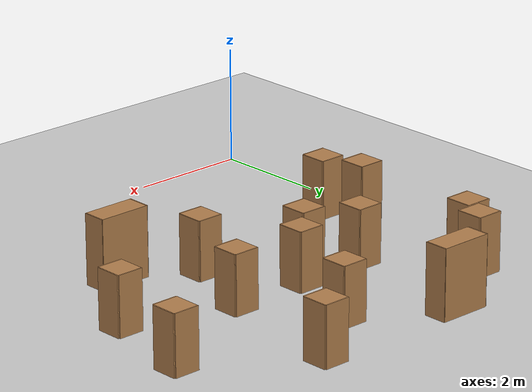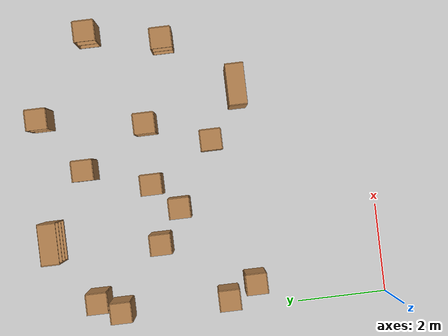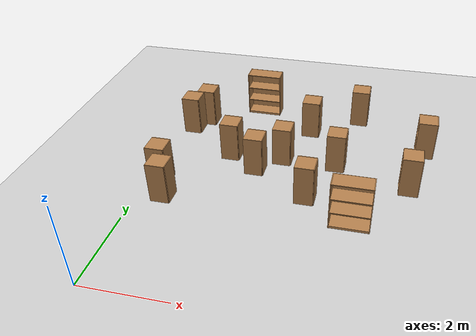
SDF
<sdf version="1.6">
 <world name="default">
  <model name="ground_plane">
   <static>1</static>
   <link name="link">
    <collision name="collision">
     <geometry><plane><normal>0 0 1</normal><size>100 100</size></plane></geometry>
     <surface><friction><ode><mu>100</mu><mu2>50</mu2></ode></friction></surface>
    </collision>
    <visual name="visual">
     <cast_shadows>0</cast_shadows>
     <geometry><plane><normal>0 0 1</normal><size>100 100</size></plane></geometry>
     <material>
      <script><uri>file://media/materials/scripts/gazebo.material</uri><name>Gazebo/Grey</name></script>
     </material>
    </visual>
   </link>
  </model>
  <model name="cabinet_45">
   <static>1</static>
   <link name="cabinet_bottom_plate">
    <inertial>
     <pose>0 0 -1 0 -0 0</pose>
     <inertia><ixx>2.05</ixx><ixy>0</ixy><ixz>0</ixz><iyy>2.05</iyy><iyz>0</iyz><izz>2.05</izz></inertia>
     <mass>25</mass>
    </inertial>
    <collision name="cabinet_bottom_plate_geom">
     <pose>0 0 0.01 0 -0 0</pose>
     <geometry><box><size>0.45 0.45 0.02</size></box></geometry>
    </collision>
    <visual name="cabinet_bottom_plate_geom_visual">
     <pose>0 0 0.01 0 -0 0</pose>
     <geometry><box><size>0.45 0.45 0.02</size></box></geometry>
     <material>
      <script><uri>file://media/materials/scripts/gazebo.material</uri><name>Gazebo/Wood</name></script>
     </material>
    </visual>
    <collision name="cabinet_bottom_plate_geom_cabinet_back_plate">
     <pose>0.235 0 0.51 0 -0 0</pose>
     <geometry><box><size>0.02 0.45 1.02</size></box></geometry>
    </collision>
    <visual name="cabinet_bottom_plate_geom_cabinet_back_plate_visual">
     <pose>0.235 0 0.51 0 -0 0</pose>
     <geometry><box><size>0.02 0.45 1.02</size></box></geometry>
     <material>
      <script><uri>file://media/materials/scripts/gazebo.material</uri><name>Gazebo/Wood</name></script>
     </material>
    </visual>
    <collision name="cabinet_bottom_plate_geom_cabinet_left_plate">
     <pose>0 0.235 0.51 0 -0 0</pose>
     <geometry><box><size>0.45 0.02 1.02</size></box></geometry>
    </collision>
    <visual name="cabinet_bottom_plate_geom_cabinet_left_plate_visual">
     <pose>0 0.235 0.51 0 -0 0</pose>
     <geometry><box><size>0.45 0.02 1.02</size></box></geometry>
     <material>
      <script><uri>file://media/materials/scripts/gazebo.material</uri><name>Gazebo/Wood</name></script>
     </material>
    </visual>
    <collision name="cabinet_bottom_plate_geom_cabinet_middle_plate">
     <pose>0 0 0.51 0 -0 0</pose>
     <geometry><box><size>0.45 0.45 0.02</size></box></geometry>
    </collision>
    <visual name="cabinet_bottom_plate_geom_cabinet_middle_plate_visual">
     <pose>0 0 0.51 0 -0 0</pose>
     <geometry><box><size>0.45 0.45 0.02</size></box></geometry>
     <material>
      <script><uri>file://media/materials/scripts/gazebo.material</uri><name>Gazebo/Wood</name></script>
     </material>
    </visual>
    <collision name="cabinet_bottom_plate_geom_cabinet_right_plate">
     <pose>0 -0.235 0.51 0 -0 0</pose>
     <geometry><box><size>0.45 0.02 1.02</size></box></geometry>
    </collision>
    <visual name="cabinet_bottom_plate_geom_cabinet_right_plate_visual">
     <pose>0 -0.235 0.51 0 -0 0</pose>
     <geometry><box><size>0.45 0.02 1.02</size></box></geometry>
     <material>
      <script><uri>file://media/materials/scripts/gazebo.material</uri><name>Gazebo/Wood</name></script>
     </material>
    </visual>
    <collision name="cabinet_bottom_plate_geom_cabinet_top_plate">
     <pose>0 0 1.01 0 -0 0</pose>
     <geometry><box><size>0.45 0.45 0.02</size></box></geometry>
    </collision>
    <visual name="cabinet_bottom_plate_geom_cabinet_top_plate_visual">
     <pose>0 0 1.01 0 -0 0</pose>
     <geometry><box><size>0.45 0.45 0.02</size></box></geometry>
     <material>
      <script><uri>file://media/materials/scripts/gazebo.material</uri><name>Gazebo/Wood</name></script>
     </material>
    </visual>
   </link>
   <pose>0.616453 2.94189 0 0 -0 0</pose>
  </model>
  <model name="bookshelf_7">
   <static>1</static>
   <link name="link">
    <inertial><mass>1</mass></inertial>
    <collision name="back">
     <pose>0 0.005 0.6 0 -0 0</pose>
     <geometry><box><size>0.9 0.01 1.2</size></box></geometry>
    </collision>
    <visual name="visual1">
     <pose>0 0.005 0.6 0 -0 0</pose>
     <geometry><box><size>0.9 0.01 1.2</size></box></geometry>
     <material>
      <script><uri>file://media/materials/scripts/gazebo.material</uri><name>Gazebo/Wood</name></script>
     </material>
    </visual>
    <collision name="left_side">
     <pose>0.45 -0.195 0.6 0 -0 0</pose>
     <geometry><box><size>0.02 0.4 1.2</size></box></geometry>
    </collision>
    <visual name="visual2">
     <pose>0.45 -0.195 0.6 0 -0 0</pose>
     <geometry><box><size>0.02 0.4 1.2</size></box></geometry>
     <material>
      <script><uri>file://media/materials/scripts/gazebo.material</uri><name>Gazebo/Wood</name></script>
     </material>
    </visual>
    <collision name="right_side">
     <pose>-0.45 -0.195 0.6 0 -0 0</pose>
     <geometry><box><size>0.02 0.4 1.2</size></box></geometry>
    </collision>
    <visual name="visual3">
     <pose>-0.45 -0.195 0.6 0 -0 0</pose>
     <geometry><box><size>0.02 0.4 1.2</size></box></geometry>
     <material>
      <script><uri>file://media/materials/scripts/gazebo.material</uri><name>Gazebo/Wood</name></script>
     </material>
    </visual>
    <collision name="bottom">
     <pose>0 -0.195 0.03 0 -0 0</pose>
     <geometry><box><size>0.88 0.4 0.06</size></box></geometry>
    </collision>
    <visual name="visual4">
     <pose>0 -0.195 0.03 0 -0 0</pose>
     <geometry><box><size>0.88 0.4 0.06</size></box></geometry>
     <material>
      <script><uri>file://media/materials/scripts/gazebo.material</uri><name>Gazebo/Wood</name></script>
     </material>
    </visual>
    <collision name="top">
     <pose>0 -0.195 1.19 0 -0 0</pose>
     <geometry><box><size>0.88 0.4 0.02</size></box></geometry>
    </collision>
    <visual name="visual5">
     <pose>0 -0.195 1.19 0 -0 0</pose>
     <geometry><box><size>0.88 0.4 0.02</size></box></geometry>
     <material>
      <script><uri>file://media/materials/scripts/gazebo.material</uri><name>Gazebo/Wood</name></script>
     </material>
    </visual>
    <collision name="low_shelf">
     <pose>0 -0.195 0.43 0 -0 0</pose>
     <geometry><box><size>0.88 0.4 0.02</size></box></geometry>
    </collision>
    <visual name="visual6">
     <pose>0 -0.195 0.43 0 -0 0</pose>
     <geometry><box><size>0.88 0.4 0.02</size></box></geometry>
     <material>
      <script><uri>file://media/materials/scripts/gazebo.material</uri><name>Gazebo/Wood</name></script>
     </material>
    </visual>
    <collision name="high_shelf">
     <pose>0 -0.195 0.8 0 -0 0</pose>
     <geometry><box><size>0.88 0.4 0.02</size></box></geometry>
    </collision>
    <visual name="visual7">
     <pose>0 -0.195 0.8 0 -0 0</pose>
     <geometry><box><size>0.88 0.4 0.02</size></box></geometry>
     <material>
      <script><uri>file://media/materials/scripts/gazebo.material</uri><name>Gazebo/Wood</name></script>
     </material>
    </visual>
   </link>
   <pose>4.99475 3.0763 0 0 -0 0</pose>
  </model>
  <model name="cabinet_50">
   <static>1</static>
   <link name="cabinet_bottom_plate">
    <inertial>
     <pose>0 0 -1 0 -0 0</pose>
     <inertia><ixx>2.05</ixx><ixy>0</ixy><ixz>0</ixz><iyy>2.05</iyy><iyz>0</iyz><izz>2.05</izz></inertia>
     <mass>25</mass>
    </inertial>
    <collision name="cabinet_bottom_plate_geom">
     <pose>0 0 0.01 0 -0 0</pose>
     <geometry><box><size>0.45 0.45 0.02</size></box></geometry>
    </collision>
    <visual name="cabinet_bottom_plate_geom_visual">
     <pose>0 0 0.01 0 -0 0</pose>
     <geometry><box><size>0.45 0.45 0.02</size></box></geometry>
     <material>
      <script><uri>file://media/materials/scripts/gazebo.material</uri><name>Gazebo/Wood</name></script>
     </material>
    </visual>
    <collision name="cabinet_bottom_plate_geom_cabinet_back_plate">
     <pose>0.235 0 0.51 0 -0 0</pose>
     <geometry><box><size>0.02 0.45 1.02</size></box></geometry>
    </collision>
    <visual name="cabinet_bottom_plate_geom_cabinet_back_plate_visual">
     <pose>0.235 0 0.51 0 -0 0</pose>
     <geometry><box><size>0.02 0.45 1.02</size></box></geometry>
     <material>
      <script><uri>file://media/materials/scripts/gazebo.material</uri><name>Gazebo/Wood</name></script>
     </material>
    </visual>
    <collision name="cabinet_bottom_plate_geom_cabinet_left_plate">
     <pose>0 0.235 0.51 0 -0 0</pose>
     <geometry><box><size>0.45 0.02 1.02</size></box></geometry>
    </collision>
    <visual name="cabinet_bottom_plate_geom_cabinet_left_plate_visual">
     <pose>0 0.235 0.51 0 -0 0</pose>
     <geometry><box><size>0.45 0.02 1.02</size></box></geometry>
     <material>
      <script><uri>file://media/materials/scripts/gazebo.material</uri><name>Gazebo/Wood</name></script>
     </material>
    </visual>
    <collision name="cabinet_bottom_plate_geom_cabinet_middle_plate">
     <pose>0 0 0.51 0 -0 0</pose>
     <geometry><box><size>0.45 0.45 0.02</size></box></geometry>
    </collision>
    <visual name="cabinet_bottom_plate_geom_cabinet_middle_plate_visual">
     <pose>0 0 0.51 0 -0 0</pose>
     <geometry><box><size>0.45 0.45 0.02</size></box></geometry>
     <material>
      <script><uri>file://media/materials/scripts/gazebo.material</uri><name>Gazebo/Wood</name></script>
     </material>
    </visual>
    <collision name="cabinet_bottom_plate_geom_cabinet_right_plate">
     <pose>0 -0.235 0.51 0 -0 0</pose>
     <geometry><box><size>0.45 0.02 1.02</size></box></geometry>
    </collision>
    <visual name="cabinet_bottom_plate_geom_cabinet_right_plate_visual">
     <pose>0 -0.235 0.51 0 -0 0</pose>
     <geometry><box><size>0.45 0.02 1.02</size></box></geometry>
     <material>
      <script><uri>file://media/materials/scripts/gazebo.material</uri><name>Gazebo/Wood</name></script>
     </material>
    </visual>
    <collision name="cabinet_bottom_plate_geom_cabinet_top_plate">
     <pose>0 0 1.01 0 -0 0</pose>
     <geometry><box><size>0.45 0.45 0.02</size></box></geometry>
    </collision>
    <visual name="cabinet_bottom_plate_geom_cabinet_top_plate_visual">
     <pose>0 0 1.01 0 -0 0</pose>
     <geometry><box><size>0.45 0.45 0.02</size></box></geometry>
     <material>
      <script><uri>file://media/materials/scripts/gazebo.material</uri><name>Gazebo/Wood</name></script>
     </material>
    </visual>
   </link>
   <pose>0.330155 3.56311 0 0 -0 0</pose>
  </model>
  <model name="cabinet_51">
   <static>1</static>
   <link name="cabinet_bottom_plate">
    <inertial>
     <pose>0 0 -1 0 -0 0</pose>
     <inertia><ixx>2.05</ixx><ixy>0</ixy><ixz>0</ixz><iyy>2.05</iyy><iyz>0</iyz><izz>2.05</izz></inertia>
     <mass>25</mass>
    </inertial>
    <collision name="cabinet_bottom_plate_geom">
     <pose>0 0 0.01 0 -0 0</pose>
     <geometry><box><size>0.45 0.45 0.02</size></box></geometry>
    </collision>
    <visual name="cabinet_bottom_plate_geom_visual">
     <pose>0 0 0.01 0 -0 0</pose>
     <geometry><box><size>0.45 0.45 0.02</size></box></geometry>
     <material>
      <script><uri>file://media/materials/scripts/gazebo.material</uri><name>Gazebo/Wood</name></script>
     </material>
    </visual>
    <collision name="cabinet_bottom_plate_geom_cabinet_back_plate">
     <pose>0.235 0 0.51 0 -0 0</pose>
     <geometry><box><size>0.02 0.45 1.02</size></box></geometry>
    </collision>
    <visual name="cabinet_bottom_plate_geom_cabinet_back_plate_visual">
     <pose>0.235 0 0.51 0 -0 0</pose>
     <geometry><box><size>0.02 0.45 1.02</size></box></geometry>
     <material>
      <script><uri>file://media/materials/scripts/gazebo.material</uri><name>Gazebo/Wood</name></script>
     </material>
    </visual>
    <collision name="cabinet_bottom_plate_geom_cabinet_left_plate">
     <pose>0 0.235 0.51 0 -0 0</pose>
     <geometry><box><size>0.45 0.02 1.02</size></box></geometry>
    </collision>
    <visual name="cabinet_bottom_plate_geom_cabinet_left_plate_visual">
     <pose>0 0.235 0.51 0 -0 0</pose>
     <geometry><box><size>0.45 0.02 1.02</size></box></geometry>
     <material>
      <script><uri>file://media/materials/scripts/gazebo.material</uri><name>Gazebo/Wood</name></script>
     </material>
    </visual>
    <collision name="cabinet_bottom_plate_geom_cabinet_middle_plate">
     <pose>0 0 0.51 0 -0 0</pose>
     <geometry><box><size>0.45 0.45 0.02</size></box></geometry>
    </collision>
    <visual name="cabinet_bottom_plate_geom_cabinet_middle_plate_visual">
     <pose>0 0 0.51 0 -0 0</pose>
     <geometry><box><size>0.45 0.45 0.02</size></box></geometry>
     <material>
      <script><uri>file://media/materials/scripts/gazebo.material</uri><name>Gazebo/Wood</name></script>
     </material>
    </visual>
    <collision name="cabinet_bottom_plate_geom_cabinet_right_plate">
     <pose>0 -0.235 0.51 0 -0 0</pose>
     <geometry><box><size>0.45 0.02 1.02</size></box></geometry>
    </collision>
    <visual name="cabinet_bottom_plate_geom_cabinet_right_plate_visual">
     <pose>0 -0.235 0.51 0 -0 0</pose>
     <geometry><box><size>0.45 0.02 1.02</size></box></geometry>
     <material>
      <script><uri>file://media/materials/scripts/gazebo.material</uri><name>Gazebo/Wood</name></script>
     </material>
    </visual>
    <collision name="cabinet_bottom_plate_geom_cabinet_top_plate">
     <pose>0 0 1.01 0 -0 0</pose>
     <geometry><box><size>0.45 0.45 0.02</size></box></geometry>
    </collision>
    <visual name="cabinet_bottom_plate_geom_cabinet_top_plate_visual">
     <pose>0 0 1.01 0 -0 0</pose>
     <geometry><box><size>0.45 0.45 0.02</size></box></geometry>
     <material>
      <script><uri>file://media/materials/scripts/gazebo.material</uri><name>Gazebo/Wood</name></script>
     </material>
    </visual>
   </link>
   <pose>2.45993 4.425 0 0 -0 0</pose>
  </model>
  <model name="cabinet_52">
   <static>1</static>
   <link name="cabinet_bottom_plate">
    <inertial>
     <pose>0 0 -1 0 -0 0</pose>
     <inertia><ixx>2.05</ixx><ixy>0</ixy><ixz>0</ixz><iyy>2.05</iyy><iyz>0</iyz><izz>2.05</izz></inertia>
     <mass>25</mass>
    </inertial>
    <collision name="cabinet_bottom_plate_geom">
     <pose>0 0 0.01 0 -0 0</pose>
     <geometry><box><size>0.45 0.45 0.02</size></box></geometry>
    </collision>
    <visual name="cabinet_bottom_plate_geom_visual">
     <pose>0 0 0.01 0 -0 0</pose>
     <geometry><box><size>0.45 0.45 0.02</size></box></geometry>
     <material>
      <script><uri>file://media/materials/scripts/gazebo.material</uri><name>Gazebo/Wood</name></script>
     </material>
    </visual>
    <collision name="cabinet_bottom_plate_geom_cabinet_back_plate">
     <pose>0.235 0 0.51 0 -0 0</pose>
     <geometry><box><size>0.02 0.45 1.02</size></box></geometry>
    </collision>
    <visual name="cabinet_bottom_plate_geom_cabinet_back_plate_visual">
     <pose>0.235 0 0.51 0 -0 0</pose>
     <geometry><box><size>0.02 0.45 1.02</size></box></geometry>
     <material>
      <script><uri>file://media/materials/scripts/gazebo.material</uri><name>Gazebo/Wood</name></script>
     </material>
    </visual>
    <collision name="cabinet_bottom_plate_geom_cabinet_left_plate">
     <pose>0 0.235 0.51 0 -0 0</pose>
     <geometry><box><size>0.45 0.02 1.02</size></box></geometry>
    </collision>
    <visual name="cabinet_bottom_plate_geom_cabinet_left_plate_visual">
     <pose>0 0.235 0.51 0 -0 0</pose>
     <geometry><box><size>0.45 0.02 1.02</size></box></geometry>
     <material>
      <script><uri>file://media/materials/scripts/gazebo.material</uri><name>Gazebo/Wood</name></script>
     </material>
    </visual>
    <collision name="cabinet_bottom_plate_geom_cabinet_middle_plate">
     <pose>0 0 0.51 0 -0 0</pose>
     <geometry><box><size>0.45 0.45 0.02</size></box></geometry>
    </collision>
    <visual name="cabinet_bottom_plate_geom_cabinet_middle_plate_visual">
     <pose>0 0 0.51 0 -0 0</pose>
     <geometry><box><size>0.45 0.45 0.02</size></box></geometry>
     <material>
      <script><uri>file://media/materials/scripts/gazebo.material</uri><name>Gazebo/Wood</name></script>
     </material>
    </visual>
    <collision name="cabinet_bottom_plate_geom_cabinet_right_plate">
     <pose>0 -0.235 0.51 0 -0 0</pose>
     <geometry><box><size>0.45 0.02 1.02</size></box></geometry>
    </collision>
    <visual name="cabinet_bottom_plate_geom_cabinet_right_plate_visual">
     <pose>0 -0.235 0.51 0 -0 0</pose>
     <geometry><box><size>0.45 0.02 1.02</size></box></geometry>
     <material>
      <script><uri>file://media/materials/scripts/gazebo.material</uri><name>Gazebo/Wood</name></script>
     </material>
    </visual>
    <collision name="cabinet_bottom_plate_geom_cabinet_top_plate">
     <pose>0 0 1.01 0 -0 0</pose>
     <geometry><box><size>0.45 0.45 0.02</size></box></geometry>
    </collision>
    <visual name="cabinet_bottom_plate_geom_cabinet_top_plate_visual">
     <pose>0 0 1.01 0 -0 0</pose>
     <geometry><box><size>0.45 0.45 0.02</size></box></geometry>
     <material>
      <script><uri>file://media/materials/scripts/gazebo.material</uri><name>Gazebo/Wood</name></script>
     </material>
    </visual>
   </link>
   <pose>3.86849 3.56689 0 0 -0 0</pose>
  </model>
  <model name="cabinet_53">
   <static>1</static>
   <link name="cabinet_bottom_plate">
    <inertial>
     <pose>0 0 -1 0 -0 0</pose>
     <inertia><ixx>2.05</ixx><ixy>0</ixy><ixz>0</ixz><iyy>2.05</iyy><iyz>0</iyz><izz>2.05</izz></inertia>
     <mass>25</mass>
    </inertial>
    <collision name="cabinet_bottom_plate_geom">
     <pose>0 0 0.01 0 -0 0</pose>
     <geometry><box><size>0.45 0.45 0.02</size></box></geometry>
    </collision>
    <visual name="cabinet_bottom_plate_geom_visual">
     <pose>0 0 0.01 0 -0 0</pose>
     <geometry><box><size>0.45 0.45 0.02</size></box></geometry>
     <material>
      <script><uri>file://media/materials/scripts/gazebo.material</uri><name>Gazebo/Wood</name></script>
     </material>
    </visual>
    <collision name="cabinet_bottom_plate_geom_cabinet_back_plate">
     <pose>0.235 0 0.51 0 -0 0</pose>
     <geometry><box><size>0.02 0.45 1.02</size></box></geometry>
    </collision>
    <visual name="cabinet_bottom_plate_geom_cabinet_back_plate_visual">
     <pose>0.235 0 0.51 0 -0 0</pose>
     <geometry><box><size>0.02 0.45 1.02</size></box></geometry>
     <material>
      <script><uri>file://media/materials/scripts/gazebo.material</uri><name>Gazebo/Wood</name></script>
     </material>
    </visual>
    <collision name="cabinet_bottom_plate_geom_cabinet_left_plate">
     <pose>0 0.235 0.51 0 -0 0</pose>
     <geometry><box><size>0.45 0.02 1.02</size></box></geometry>
    </collision>
    <visual name="cabinet_bottom_plate_geom_cabinet_left_plate_visual">
     <pose>0 0.235 0.51 0 -0 0</pose>
     <geometry><box><size>0.45 0.02 1.02</size></box></geometry>
     <material>
      <script><uri>file://media/materials/scripts/gazebo.material</uri><name>Gazebo/Wood</name></script>
     </material>
    </visual>
    <collision name="cabinet_bottom_plate_geom_cabinet_middle_plate">
     <pose>0 0 0.51 0 -0 0</pose>
     <geometry><box><size>0.45 0.45 0.02</size></box></geometry>
    </collision>
    <visual name="cabinet_bottom_plate_geom_cabinet_middle_plate_visual">
     <pose>0 0 0.51 0 -0 0</pose>
     <geometry><box><size>0.45 0.45 0.02</size></box></geometry>
     <material>
      <script><uri>file://media/materials/scripts/gazebo.material</uri><name>Gazebo/Wood</name></script>
     </material>
    </visual>
    <collision name="cabinet_bottom_plate_geom_cabinet_right_plate">
     <pose>0 -0.235 0.51 0 -0 0</pose>
     <geometry><box><size>0.45 0.02 1.02</size></box></geometry>
    </collision>
    <visual name="cabinet_bottom_plate_geom_cabinet_right_plate_visual">
     <pose>0 -0.235 0.51 0 -0 0</pose>
     <geometry><box><size>0.45 0.02 1.02</size></box></geometry>
     <material>
      <script><uri>file://media/materials/scripts/gazebo.material</uri><name>Gazebo/Wood</name></script>
     </material>
    </visual>
    <collision name="cabinet_bottom_plate_geom_cabinet_top_plate">
     <pose>0 0 1.01 0 -0 0</pose>
     <geometry><box><size>0.45 0.45 0.02</size></box></geometry>
    </collision>
    <visual name="cabinet_bottom_plate_geom_cabinet_top_plate_visual">
     <pose>0 0 1.01 0 -0 0</pose>
     <geometry><box><size>0.45 0.45 0.02</size></box></geometry>
     <material>
      <script><uri>file://media/materials/scripts/gazebo.material</uri><name>Gazebo/Wood</name></script>
     </material>
    </visual>
   </link>
   <pose>6.20505 4.39624 0 0 -0 0</pose>
  </model>
  <model name="cabinet_54">
   <static>1</static>
   <link name="cabinet_bottom_plate">
    <inertial>
     <pose>0 0 -1 0 -0 0</pose>
     <inertia><ixx>2.05</ixx><ixy>0</ixy><ixz>0</ixz><iyy>2.05</iyy><iyz>0</iyz><izz>2.05</izz></inertia>
     <mass>25</mass>
    </inertial>
    <collision name="cabinet_bottom_plate_geom">
     <pose>0 0 0.01 0 -0 0</pose>
     <geometry><box><size>0.45 0.45 0.02</size></box></geometry>
    </collision>
    <visual name="cabinet_bottom_plate_geom_visual">
     <pose>0 0 0.01 0 -0 0</pose>
     <geometry><box><size>0.45 0.45 0.02</size></box></geometry>
     <material>
      <script><uri>file://media/materials/scripts/gazebo.material</uri><name>Gazebo/Wood</name></script>
     </material>
    </visual>
    <collision name="cabinet_bottom_plate_geom_cabinet_back_plate">
     <pose>0.235 0 0.51 0 -0 0</pose>
     <geometry><box><size>0.02 0.45 1.02</size></box></geometry>
    </collision>
    <visual name="cabinet_bottom_plate_geom_cabinet_back_plate_visual">
     <pose>0.235 0 0.51 0 -0 0</pose>
     <geometry><box><size>0.02 0.45 1.02</size></box></geometry>
     <material>
      <script><uri>file://media/materials/scripts/gazebo.material</uri><name>Gazebo/Wood</name></script>
     </material>
    </visual>
    <collision name="cabinet_bottom_plate_geom_cabinet_left_plate">
     <pose>0 0.235 0.51 0 -0 0</pose>
     <geometry><box><size>0.45 0.02 1.02</size></box></geometry>
    </collision>
    <visual name="cabinet_bottom_plate_geom_cabinet_left_plate_visual">
     <pose>0 0.235 0.51 0 -0 0</pose>
     <geometry><box><size>0.45 0.02 1.02</size></box></geometry>
     <material>
      <script><uri>file://media/materials/scripts/gazebo.material</uri><name>Gazebo/Wood</name></script>
     </material>
    </visual>
    <collision name="cabinet_bottom_plate_geom_cabinet_middle_plate">
     <pose>0 0 0.51 0 -0 0</pose>
     <geometry><box><size>0.45 0.45 0.02</size></box></geometry>
    </collision>
    <visual name="cabinet_bottom_plate_geom_cabinet_middle_plate_visual">
     <pose>0 0 0.51 0 -0 0</pose>
     <geometry><box><size>0.45 0.45 0.02</size></box></geometry>
     <material>
      <script><uri>file://media/materials/scripts/gazebo.material</uri><name>Gazebo/Wood</name></script>
     </material>
    </visual>
    <collision name="cabinet_bottom_plate_geom_cabinet_right_plate">
     <pose>0 -0.235 0.51 0 -0 0</pose>
     <geometry><box><size>0.45 0.02 1.02</size></box></geometry>
    </collision>
    <visual name="cabinet_bottom_plate_geom_cabinet_right_plate_visual">
     <pose>0 -0.235 0.51 0 -0 0</pose>
     <geometry><box><size>0.45 0.02 1.02</size></box></geometry>
     <material>
      <script><uri>file://media/materials/scripts/gazebo.material</uri><name>Gazebo/Wood</name></script>
     </material>
    </visual>
    <collision name="cabinet_bottom_plate_geom_cabinet_top_plate">
     <pose>0 0 1.01 0 -0 0</pose>
     <geometry><box><size>0.45 0.45 0.02</size></box></geometry>
    </collision>
    <visual name="cabinet_bottom_plate_geom_cabinet_top_plate_visual">
     <pose>0 0 1.01 0 -0 0</pose>
     <geometry><box><size>0.45 0.45 0.02</size></box></geometry>
     <material>
      <script><uri>file://media/materials/scripts/gazebo.material</uri><name>Gazebo/Wood</name></script>
     </material>
    </visual>
   </link>
   <pose>6.54566 6.04568 0 0 -0 0</pose>
  </model>
  <model name="cabinet_55">
   <static>1</static>
   <link name="cabinet_bottom_plate">
    <inertial>
     <pose>0 0 -1 0 -0 0</pose>
     <inertia><ixx>2.05</ixx><ixy>0</ixy><ixz>0</ixz><iyy>2.05</iyy><iyz>0</iyz><izz>2.05</izz></inertia>
     <mass>25</mass>
    </inertial>
    <collision name="cabinet_bottom_plate_geom">
     <pose>0 0 0.01 0 -0 0</pose>
     <geometry><box><size>0.45 0.45 0.02</size></box></geometry>
    </collision>
    <visual name="cabinet_bottom_plate_geom_visual">
     <pose>0 0 0.01 0 -0 0</pose>
     <geometry><box><size>0.45 0.45 0.02</size></box></geometry>
     <material>
      <script><uri>file://media/materials/scripts/gazebo.material</uri><name>Gazebo/Wood</name></script>
     </material>
    </visual>
    <collision name="cabinet_bottom_plate_geom_cabinet_back_plate">
     <pose>0.235 0 0.51 0 -0 0</pose>
     <geometry><box><size>0.02 0.45 1.02</size></box></geometry>
    </collision>
    <visual name="cabinet_bottom_plate_geom_cabinet_back_plate_visual">
     <pose>0.235 0 0.51 0 -0 0</pose>
     <geometry><box><size>0.02 0.45 1.02</size></box></geometry>
     <material>
      <script><uri>file://media/materials/scripts/gazebo.material</uri><name>Gazebo/Wood</name></script>
     </material>
    </visual>
    <collision name="cabinet_bottom_plate_geom_cabinet_left_plate">
     <pose>0 0.235 0.51 0 -0 0</pose>
     <geometry><box><size>0.45 0.02 1.02</size></box></geometry>
    </collision>
    <visual name="cabinet_bottom_plate_geom_cabinet_left_plate_visual">
     <pose>0 0.235 0.51 0 -0 0</pose>
     <geometry><box><size>0.45 0.02 1.02</size></box></geometry>
     <material>
      <script><uri>file://media/materials/scripts/gazebo.material</uri><name>Gazebo/Wood</name></script>
     </material>
    </visual>
    <collision name="cabinet_bottom_plate_geom_cabinet_middle_plate">
     <pose>0 0 0.51 0 -0 0</pose>
     <geometry><box><size>0.45 0.45 0.02</size></box></geometry>
    </collision>
    <visual name="cabinet_bottom_plate_geom_cabinet_middle_plate_visual">
     <pose>0 0 0.51 0 -0 0</pose>
     <geometry><box><size>0.45 0.45 0.02</size></box></geometry>
     <material>
      <script><uri>file://media/materials/scripts/gazebo.material</uri><name>Gazebo/Wood</name></script>
     </material>
    </visual>
    <collision name="cabinet_bottom_plate_geom_cabinet_right_plate">
     <pose>0 -0.235 0.51 0 -0 0</pose>
     <geometry><box><size>0.45 0.02 1.02</size></box></geometry>
    </collision>
    <visual name="cabinet_bottom_plate_geom_cabinet_right_plate_visual">
     <pose>0 -0.235 0.51 0 -0 0</pose>
     <geometry><box><size>0.45 0.02 1.02</size></box></geometry>
     <material>
      <script><uri>file://media/materials/scripts/gazebo.material</uri><name>Gazebo/Wood</name></script>
     </material>
    </visual>
    <collision name="cabinet_bottom_plate_geom_cabinet_top_plate">
     <pose>0 0 1.01 0 -0 0</pose>
     <geometry><box><size>0.45 0.45 0.02</size></box></geometry>
    </collision>
    <visual name="cabinet_bottom_plate_geom_cabinet_top_plate_visual">
     <pose>0 0 1.01 0 -0 0</pose>
     <geometry><box><size>0.45 0.45 0.02</size></box></geometry>
     <material>
      <script><uri>file://media/materials/scripts/gazebo.material</uri><name>Gazebo/Wood</name></script>
     </material>
    </visual>
   </link>
   <pose>4.39353 4.97752 0 0 -0 0</pose>
  </model>
  <model name="cabinet_56">
   <static>1</static>
   <link name="cabinet_bottom_plate">
    <inertial>
     <pose>0 0 -1 0 -0 0</pose>
     <inertia><ixx>2.05</ixx><ixy>0</ixy><ixz>0</ixz><iyy>2.05</iyy><iyz>0</iyz><izz>2.05</izz></inertia>
     <mass>25</mass>
    </inertial>
    <collision name="cabinet_bottom_plate_geom">
     <pose>0 0 0.01 0 -0 0</pose>
     <geometry><box><size>0.45 0.45 0.02</size></box></geometry>
    </collision>
    <visual name="cabinet_bottom_plate_geom_visual">
     <pose>0 0 0.01 0 -0 0</pose>
     <geometry><box><size>0.45 0.45 0.02</size></box></geometry>
     <material>
      <script><uri>file://media/materials/scripts/gazebo.material</uri><name>Gazebo/Wood</name></script>
     </material>
    </visual>
    <collision name="cabinet_bottom_plate_geom_cabinet_back_plate">
     <pose>0.235 0 0.51 0 -0 0</pose>
     <geometry><box><size>0.02 0.45 1.02</size></box></geometry>
    </collision>
    <visual name="cabinet_bottom_plate_geom_cabinet_back_plate_visual">
     <pose>0.235 0 0.51 0 -0 0</pose>
     <geometry><box><size>0.02 0.45 1.02</size></box></geometry>
     <material>
      <script><uri>file://media/materials/scripts/gazebo.material</uri><name>Gazebo/Wood</name></script>
     </material>
    </visual>
    <collision name="cabinet_bottom_plate_geom_cabinet_left_plate">
     <pose>0 0.235 0.51 0 -0 0</pose>
     <geometry><box><size>0.45 0.02 1.02</size></box></geometry>
    </collision>
    <visual name="cabinet_bottom_plate_geom_cabinet_left_plate_visual">
     <pose>0 0.235 0.51 0 -0 0</pose>
     <geometry><box><size>0.45 0.02 1.02</size></box></geometry>
     <material>
      <script><uri>file://media/materials/scripts/gazebo.material</uri><name>Gazebo/Wood</name></script>
     </material>
    </visual>
    <collision name="cabinet_bottom_plate_geom_cabinet_middle_plate">
     <pose>0 0 0.51 0 -0 0</pose>
     <geometry><box><size>0.45 0.45 0.02</size></box></geometry>
    </collision>
    <visual name="cabinet_bottom_plate_geom_cabinet_middle_plate_visual">
     <pose>0 0 0.51 0 -0 0</pose>
     <geometry><box><size>0.45 0.45 0.02</size></box></geometry>
     <material>
      <script><uri>file://media/materials/scripts/gazebo.material</uri><name>Gazebo/Wood</name></script>
     </material>
    </visual>
    <collision name="cabinet_bottom_plate_geom_cabinet_right_plate">
     <pose>0 -0.235 0.51 0 -0 0</pose>
     <geometry><box><size>0.45 0.02 1.02</size></box></geometry>
    </collision>
    <visual name="cabinet_bottom_plate_geom_cabinet_right_plate_visual">
     <pose>0 -0.235 0.51 0 -0 0</pose>
     <geometry><box><size>0.45 0.02 1.02</size></box></geometry>
     <material>
      <script><uri>file://media/materials/scripts/gazebo.material</uri><name>Gazebo/Wood</name></script>
     </material>
    </visual>
    <collision name="cabinet_bottom_plate_geom_cabinet_top_plate">
     <pose>0 0 1.01 0 -0 0</pose>
     <geometry><box><size>0.45 0.45 0.02</size></box></geometry>
    </collision>
    <visual name="cabinet_bottom_plate_geom_cabinet_top_plate_visual">
     <pose>0 0 1.01 0 -0 0</pose>
     <geometry><box><size>0.45 0.45 0.02</size></box></geometry>
     <material>
      <script><uri>file://media/materials/scripts/gazebo.material</uri><name>Gazebo/Wood</name></script>
     </material>
    </visual>
   </link>
   <pose>3.04232 4.98279 0 0 -0 0</pose>
  </model>
  <model name="cabinet_57">
   <static>1</static>
   <link name="cabinet_bottom_plate">
    <inertial>
     <pose>0 0 -1 0 -0 0</pose>
     <inertia><ixx>2.05</ixx><ixy>0</ixy><ixz>0</ixz><iyy>2.05</iyy><iyz>0</iyz><izz>2.05</izz></inertia>
     <mass>25</mass>
    </inertial>
    <collision name="cabinet_bottom_plate_geom">
     <pose>0 0 0.01 0 -0 0</pose>
     <geometry><box><size>0.45 0.45 0.02</size></box></geometry>
    </collision>
    <visual name="cabinet_bottom_plate_geom_visual">
     <pose>0 0 0.01 0 -0 0</pose>
     <geometry><box><size>0.45 0.45 0.02</size></box></geometry>
     <material>
      <script><uri>file://media/materials/scripts/gazebo.material</uri><name>Gazebo/Wood</name></script>
     </material>
    </visual>
    <collision name="cabinet_bottom_plate_geom_cabinet_back_plate">
     <pose>0.235 0 0.51 0 -0 0</pose>
     <geometry><box><size>0.02 0.45 1.02</size></box></geometry>
    </collision>
    <visual name="cabinet_bottom_plate_geom_cabinet_back_plate_visual">
     <pose>0.235 0 0.51 0 -0 0</pose>
     <geometry><box><size>0.02 0.45 1.02</size></box></geometry>
     <material>
      <script><uri>file://media/materials/scripts/gazebo.material</uri><name>Gazebo/Wood</name></script>
     </material>
    </visual>
    <collision name="cabinet_bottom_plate_geom_cabinet_left_plate">
     <pose>0 0.235 0.51 0 -0 0</pose>
     <geometry><box><size>0.45 0.02 1.02</size></box></geometry>
    </collision>
    <visual name="cabinet_bottom_plate_geom_cabinet_left_plate_visual">
     <pose>0 0.235 0.51 0 -0 0</pose>
     <geometry><box><size>0.45 0.02 1.02</size></box></geometry>
     <material>
      <script><uri>file://media/materials/scripts/gazebo.material</uri><name>Gazebo/Wood</name></script>
     </material>
    </visual>
    <collision name="cabinet_bottom_plate_geom_cabinet_middle_plate">
     <pose>0 0 0.51 0 -0 0</pose>
     <geometry><box><size>0.45 0.45 0.02</size></box></geometry>
    </collision>
    <visual name="cabinet_bottom_plate_geom_cabinet_middle_plate_visual">
     <pose>0 0 0.51 0 -0 0</pose>
     <geometry><box><size>0.45 0.45 0.02</size></box></geometry>
     <material>
      <script><uri>file://media/materials/scripts/gazebo.material</uri><name>Gazebo/Wood</name></script>
     </material>
    </visual>
    <collision name="cabinet_bottom_plate_geom_cabinet_right_plate">
     <pose>0 -0.235 0.51 0 -0 0</pose>
     <geometry><box><size>0.45 0.02 1.02</size></box></geometry>
    </collision>
    <visual name="cabinet_bottom_plate_geom_cabinet_right_plate_visual">
     <pose>0 -0.235 0.51 0 -0 0</pose>
     <geometry><box><size>0.45 0.02 1.02</size></box></geometry>
     <material>
      <script><uri>file://media/materials/scripts/gazebo.material</uri><name>Gazebo/Wood</name></script>
     </material>
    </visual>
    <collision name="cabinet_bottom_plate_geom_cabinet_top_plate">
     <pose>0 0 1.01 0 -0 0</pose>
     <geometry><box><size>0.45 0.45 0.02</size></box></geometry>
    </collision>
    <visual name="cabinet_bottom_plate_geom_cabinet_top_plate_visual">
     <pose>0 0 1.01 0 -0 0</pose>
     <geometry><box><size>0.45 0.45 0.02</size></box></geometry>
     <material>
      <script><uri>file://media/materials/scripts/gazebo.material</uri><name>Gazebo/Wood</name></script>
     </material>
    </visual>
   </link>
   <pose>1.71516 4.92866 0 0 -0 0</pose>
  </model>
  <model name="cabinet_58">
   <static>1</static>
   <link name="cabinet_bottom_plate">
    <inertial>
     <pose>0 0 -1 0 -0 0</pose>
     <inertia><ixx>2.05</ixx><ixy>0</ixy><ixz>0</ixz><iyy>2.05</iyy><iyz>0</iyz><izz>2.05</izz></inertia>
     <mass>25</mass>
    </inertial>
    <collision name="cabinet_bottom_plate_geom">
     <pose>0 0 0.01 0 -0 0</pose>
     <geometry><box><size>0.45 0.45 0.02</size></box></geometry>
    </collision>
    <visual name="cabinet_bottom_plate_geom_visual">
     <pose>0 0 0.01 0 -0 0</pose>
     <geometry><box><size>0.45 0.45 0.02</size></box></geometry>
     <material>
      <script><uri>file://media/materials/scripts/gazebo.material</uri><name>Gazebo/Wood</name></script>
     </material>
    </visual>
    <collision name="cabinet_bottom_plate_geom_cabinet_back_plate">
     <pose>0.235 0 0.51 0 -0 0</pose>
     <geometry><box><size>0.02 0.45 1.02</size></box></geometry>
    </collision>
    <visual name="cabinet_bottom_plate_geom_cabinet_back_plate_visual">
     <pose>0.235 0 0.51 0 -0 0</pose>
     <geometry><box><size>0.02 0.45 1.02</size></box></geometry>
     <material>
      <script><uri>file://media/materials/scripts/gazebo.material</uri><name>Gazebo/Wood</name></script>
     </material>
    </visual>
    <collision name="cabinet_bottom_plate_geom_cabinet_left_plate">
     <pose>0 0.235 0.51 0 -0 0</pose>
     <geometry><box><size>0.45 0.02 1.02</size></box></geometry>
    </collision>
    <visual name="cabinet_bottom_plate_geom_cabinet_left_plate_visual">
     <pose>0 0.235 0.51 0 -0 0</pose>
     <geometry><box><size>0.45 0.02 1.02</size></box></geometry>
     <material>
      <script><uri>file://media/materials/scripts/gazebo.material</uri><name>Gazebo/Wood</name></script>
     </material>
    </visual>
    <collision name="cabinet_bottom_plate_geom_cabinet_middle_plate">
     <pose>0 0 0.51 0 -0 0</pose>
     <geometry><box><size>0.45 0.45 0.02</size></box></geometry>
    </collision>
    <visual name="cabinet_bottom_plate_geom_cabinet_middle_plate_visual">
     <pose>0 0 0.51 0 -0 0</pose>
     <geometry><box><size>0.45 0.45 0.02</size></box></geometry>
     <material>
      <script><uri>file://media/materials/scripts/gazebo.material</uri><name>Gazebo/Wood</name></script>
     </material>
    </visual>
    <collision name="cabinet_bottom_plate_geom_cabinet_right_plate">
     <pose>0 -0.235 0.51 0 -0 0</pose>
     <geometry><box><size>0.45 0.02 1.02</size></box></geometry>
    </collision>
    <visual name="cabinet_bottom_plate_geom_cabinet_right_plate_visual">
     <pose>0 -0.235 0.51 0 -0 0</pose>
     <geometry><box><size>0.45 0.02 1.02</size></box></geometry>
     <material>
      <script><uri>file://media/materials/scripts/gazebo.material</uri><name>Gazebo/Wood</name></script>
     </material>
    </visual>
    <collision name="cabinet_bottom_plate_geom_cabinet_top_plate">
     <pose>0 0 1.01 0 -0 0</pose>
     <geometry><box><size>0.45 0.45 0.02</size></box></geometry>
    </collision>
    <visual name="cabinet_bottom_plate_geom_cabinet_top_plate_visual">
     <pose>0 0 1.01 0 -0 0</pose>
     <geometry><box><size>0.45 0.45 0.02</size></box></geometry>
     <material>
      <script><uri>file://media/materials/scripts/gazebo.material</uri><name>Gazebo/Wood</name></script>
     </material>
    </visual>
   </link>
   <pose>0.334825 5.96237 0 0 -0 0</pose>
  </model>
  <model name="cabinet_68">
   <static>1</static>
   <link name="cabinet_bottom_plate">
    <inertial>
     <pose>0 0 -1 0 -0 0</pose>
     <inertia><ixx>2.05</ixx><ixy>0</ixy><ixz>0</ixz><iyy>2.05</iyy><iyz>0</iyz><izz>2.05</izz></inertia>
     <mass>25</mass>
    </inertial>
    <collision name="cabinet_bottom_plate_geom">
     <pose>0 0 0.01 0 -0 0</pose>
     <geometry><box><size>0.45 0.45 0.02</size></box></geometry>
    </collision>
    <visual name="cabinet_bottom_plate_geom_visual">
     <pose>0 0 0.01 0 -0 0</pose>
     <geometry><box><size>0.45 0.45 0.02</size></box></geometry>
     <material>
      <script><uri>file://media/materials/scripts/gazebo.material</uri><name>Gazebo/Wood</name></script>
     </material>
    </visual>
    <collision name="cabinet_bottom_plate_geom_cabinet_back_plate">
     <pose>0.235 0 0.51 0 -0 0</pose>
     <geometry><box><size>0.02 0.45 1.02</size></box></geometry>
    </collision>
    <visual name="cabinet_bottom_plate_geom_cabinet_back_plate_visual">
     <pose>0.235 0 0.51 0 -0 0</pose>
     <geometry><box><size>0.02 0.45 1.02</size></box></geometry>
     <material>
      <script><uri>file://media/materials/scripts/gazebo.material</uri><name>Gazebo/Wood</name></script>
     </material>
    </visual>
    <collision name="cabinet_bottom_plate_geom_cabinet_left_plate">
     <pose>0 0.235 0.51 0 -0 0</pose>
     <geometry><box><size>0.45 0.02 1.02</size></box></geometry>
    </collision>
    <visual name="cabinet_bottom_plate_geom_cabinet_left_plate_visual">
     <pose>0 0.235 0.51 0 -0 0</pose>
     <geometry><box><size>0.45 0.02 1.02</size></box></geometry>
     <material>
      <script><uri>file://media/materials/scripts/gazebo.material</uri><name>Gazebo/Wood</name></script>
     </material>
    </visual>
    <collision name="cabinet_bottom_plate_geom_cabinet_middle_plate">
     <pose>0 0 0.51 0 -0 0</pose>
     <geometry><box><size>0.45 0.45 0.02</size></box></geometry>
    </collision>
    <visual name="cabinet_bottom_plate_geom_cabinet_middle_plate_visual">
     <pose>0 0 0.51 0 -0 0</pose>
     <geometry><box><size>0.45 0.45 0.02</size></box></geometry>
     <material>
      <script><uri>file://media/materials/scripts/gazebo.material</uri><name>Gazebo/Wood</name></script>
     </material>
    </visual>
    <collision name="cabinet_bottom_plate_geom_cabinet_right_plate">
     <pose>0 -0.235 0.51 0 -0 0</pose>
     <geometry><box><size>0.45 0.02 1.02</size></box></geometry>
    </collision>
    <visual name="cabinet_bottom_plate_geom_cabinet_right_plate_visual">
     <pose>0 -0.235 0.51 0 -0 0</pose>
     <geometry><box><size>0.45 0.02 1.02</size></box></geometry>
     <material>
      <script><uri>file://media/materials/scripts/gazebo.material</uri><name>Gazebo/Wood</name></script>
     </material>
    </visual>
    <collision name="cabinet_bottom_plate_geom_cabinet_top_plate">
     <pose>0 0 1.01 0 -0 0</pose>
     <geometry><box><size>0.45 0.45 0.02</size></box></geometry>
    </collision>
    <visual name="cabinet_bottom_plate_geom_cabinet_top_plate_visual">
     <pose>0 0 1.01 0 -0 0</pose>
     <geometry><box><size>0.45 0.45 0.02</size></box></geometry>
     <material>
      <script><uri>file://media/materials/scripts/gazebo.material</uri><name>Gazebo/Wood</name></script>
     </material>
    </visual>
   </link>
   <pose>0.599674 6.45613 0 0 -0 0</pose>
  </model>
  <model name="bookshelf_11">
   <static>1</static>
   <link name="link">
    <inertial><mass>1</mass></inertial>
    <collision name="back">
     <pose>0 0.005 0.6 0 -0 0</pose>
     <geometry><box><size>0.9 0.01 1.2</size></box></geometry>
    </collision>
    <visual name="visual1">
     <pose>0 0.005 0.6 0 -0 0</pose>
     <geometry><box><size>0.9 0.01 1.2</size></box></geometry>
     <material>
      <script><uri>file://media/materials/scripts/gazebo.material</uri><name>Gazebo/Wood</name></script>
     </material>
    </visual>
    <collision name="left_side">
     <pose>0.45 -0.195 0.6 0 -0 0</pose>
     <geometry><box><size>0.02 0.4 1.2</size></box></geometry>
    </collision>
    <visual name="visual2">
     <pose>0.45 -0.195 0.6 0 -0 0</pose>
     <geometry><box><size>0.02 0.4 1.2</size></box></geometry>
     <material>
      <script><uri>file://media/materials/scripts/gazebo.material</uri><name>Gazebo/Wood</name></script>
     </material>
    </visual>
    <collision name="right_side">
     <pose>-0.45 -0.195 0.6 0 -0 0</pose>
     <geometry><box><size>0.02 0.4 1.2</size></box></geometry>
    </collision>
    <visual name="visual3">
     <pose>-0.45 -0.195 0.6 0 -0 0</pose>
     <geometry><box><size>0.02 0.4 1.2</size></box></geometry>
     <material>
      <script><uri>file://media/materials/scripts/gazebo.material</uri><name>Gazebo/Wood</name></script>
     </material>
    </visual>
    <collision name="bottom">
     <pose>0 -0.195 0.03 0 -0 0</pose>
     <geometry><box><size>0.88 0.4 0.06</size></box></geometry>
    </collision>
    <visual name="visual4">
     <pose>0 -0.195 0.03 0 -0 0</pose>
     <geometry><box><size>0.88 0.4 0.06</size></box></geometry>
     <material>
      <script><uri>file://media/materials/scripts/gazebo.material</uri><name>Gazebo/Wood</name></script>
     </material>
    </visual>
    <collision name="top">
     <pose>0 -0.195 1.19 0 -0 0</pose>
     <geometry><box><size>0.88 0.4 0.02</size></box></geometry>
    </collision>
    <visual name="visual5">
     <pose>0 -0.195 1.19 0 -0 0</pose>
     <geometry><box><size>0.88 0.4 0.02</size></box></geometry>
     <material>
      <script><uri>file://media/materials/scripts/gazebo.material</uri><name>Gazebo/Wood</name></script>
     </material>
    </visual>
    <collision name="low_shelf">
     <pose>0 -0.195 0.43 0 -0 0</pose>
     <geometry><box><size>0.88 0.4 0.02</size></box></geometry>
    </collision>
    <visual name="visual6">
     <pose>0 -0.195 0.43 0 -0 0</pose>
     <geometry><box><size>0.88 0.4 0.02</size></box></geometry>
     <material>
      <script><uri>file://media/materials/scripts/gazebo.material</uri><name>Gazebo/Wood</name></script>
     </material>
    </visual>
    <collision name="high_shelf">
     <pose>0 -0.195 0.8 0 -0 0</pose>
     <geometry><box><size>0.88 0.4 0.02</size></box></geometry>
    </collision>
    <visual name="visual7">
     <pose>0 -0.195 0.8 0 -0 0</pose>
     <geometry><box><size>0.88 0.4 0.02</size></box></geometry>
     <material>
      <script><uri>file://media/materials/scripts/gazebo.material</uri><name>Gazebo/Wood</name></script>
     </material>
    </visual>
   </link>
   <pose>2.02329 7.52074 0 0 -0 0</pose>
  </model>
  <model name="cabinet_69">
   <static>1</static>
   <link name="cabinet_bottom_plate">
    <inertial>
     <pose>0 0 -1 0 -0 0</pose>
     <inertia><ixx>2.05</ixx><ixy>0</ixy><ixz>0</ixz><iyy>2.05</iyy><iyz>0</iyz><izz>2.05</izz></inertia>
     <mass>25</mass>
    </inertial>
    <collision name="cabinet_bottom_plate_geom">
     <pose>0 0 0.01 0 -0 0</pose>
     <geometry><box><size>0.45 0.45 0.02</size></box></geometry>
    </collision>
    <visual name="cabinet_bottom_plate_geom_visual">
     <pose>0 0 0.01 0 -0 0</pose>
     <geometry><box><size>0.45 0.45 0.02</size></box></geometry>
     <material>
      <script><uri>file://media/materials/scripts/gazebo.material</uri><name>Gazebo/Wood</name></script>
     </material>
    </visual>
    <collision name="cabinet_bottom_plate_geom_cabinet_back_plate">
     <pose>0.235 0 0.51 0 -0 0</pose>
     <geometry><box><size>0.02 0.45 1.02</size></box></geometry>
    </collision>
    <visual name="cabinet_bottom_plate_geom_cabinet_back_plate_visual">
     <pose>0.235 0 0.51 0 -0 0</pose>
     <geometry><box><size>0.02 0.45 1.02</size></box></geometry>
     <material>
      <script><uri>file://media/materials/scripts/gazebo.material</uri><name>Gazebo/Wood</name></script>
     </material>
    </visual>
    <collision name="cabinet_bottom_plate_geom_cabinet_left_plate">
     <pose>0 0.235 0.51 0 -0 0</pose>
     <geometry><box><size>0.45 0.02 1.02</size></box></geometry>
    </collision>
    <visual name="cabinet_bottom_plate_geom_cabinet_left_plate_visual">
     <pose>0 0.235 0.51 0 -0 0</pose>
     <geometry><box><size>0.45 0.02 1.02</size></box></geometry>
     <material>
      <script><uri>file://media/materials/scripts/gazebo.material</uri><name>Gazebo/Wood</name></script>
     </material>
    </visual>
    <collision name="cabinet_bottom_plate_geom_cabinet_middle_plate">
     <pose>0 0 0.51 0 -0 0</pose>
     <geometry><box><size>0.45 0.45 0.02</size></box></geometry>
    </collision>
    <visual name="cabinet_bottom_plate_geom_cabinet_middle_plate_visual">
     <pose>0 0 0.51 0 -0 0</pose>
     <geometry><box><size>0.45 0.45 0.02</size></box></geometry>
     <material>
      <script><uri>file://media/materials/scripts/gazebo.material</uri><name>Gazebo/Wood</name></script>
     </material>
    </visual>
    <collision name="cabinet_bottom_plate_geom_cabinet_right_plate">
     <pose>0 -0.235 0.51 0 -0 0</pose>
     <geometry><box><size>0.45 0.02 1.02</size></box></geometry>
    </collision>
    <visual name="cabinet_bottom_plate_geom_cabinet_right_plate_visual">
     <pose>0 -0.235 0.51 0 -0 0</pose>
     <geometry><box><size>0.45 0.02 1.02</size></box></geometry>
     <material>
      <script><uri>file://media/materials/scripts/gazebo.material</uri><name>Gazebo/Wood</name></script>
     </material>
    </visual>
    <collision name="cabinet_bottom_plate_geom_cabinet_top_plate">
     <pose>0 0 1.01 0 -0 0</pose>
     <geometry><box><size>0.45 0.45 0.02</size></box></geometry>
    </collision>
    <visual name="cabinet_bottom_plate_geom_cabinet_top_plate_visual">
     <pose>0 0 1.01 0 -0 0</pose>
     <geometry><box><size>0.45 0.45 0.02</size></box></geometry>
     <material>
      <script><uri>file://media/materials/scripts/gazebo.material</uri><name>Gazebo/Wood</name></script>
     </material>
    </visual>
   </link>
   <pose>3.52343 6.43562 0 0 -0 0</pose>
  </model>
  <model name="cabinet_70">
   <static>1</static>
   <link name="cabinet_bottom_plate">
    <inertial>
     <pose>0 0 -1 0 -0 0</pose>
     <inertia><ixx>2.05</ixx><ixy>0</ixy><ixz>0</ixz><iyy>2.05</iyy><iyz>0</iyz><izz>2.05</izz></inertia>
     <mass>25</mass>
    </inertial>
    <collision name="cabinet_bottom_plate_geom">
     <pose>0 0 0.01 0 -0 0</pose>
     <geometry><box><size>0.45 0.45 0.02</size></box></geometry>
    </collision>
    <visual name="cabinet_bottom_plate_geom_visual">
     <pose>0 0 0.01 0 -0 0</pose>
     <geometry><box><size>0.45 0.45 0.02</size></box></geometry>
     <material>
      <script><uri>file://media/materials/scripts/gazebo.material</uri><name>Gazebo/Wood</name></script>
     </material>
    </visual>
    <collision name="cabinet_bottom_plate_geom_cabinet_back_plate">
     <pose>0.235 0 0.51 0 -0 0</pose>
     <geometry><box><size>0.02 0.45 1.02</size></box></geometry>
    </collision>
    <visual name="cabinet_bottom_plate_geom_cabinet_back_plate_visual">
     <pose>0.235 0 0.51 0 -0 0</pose>
     <geometry><box><size>0.02 0.45 1.02</size></box></geometry>
     <material>
      <script><uri>file://media/materials/scripts/gazebo.material</uri><name>Gazebo/Wood</name></script>
     </material>
    </visual>
    <collision name="cabinet_bottom_plate_geom_cabinet_left_plate">
     <pose>0 0.235 0.51 0 -0 0</pose>
     <geometry><box><size>0.45 0.02 1.02</size></box></geometry>
    </collision>
    <visual name="cabinet_bottom_plate_geom_cabinet_left_plate_visual">
     <pose>0 0.235 0.51 0 -0 0</pose>
     <geometry><box><size>0.45 0.02 1.02</size></box></geometry>
     <material>
      <script><uri>file://media/materials/scripts/gazebo.material</uri><name>Gazebo/Wood</name></script>
     </material>
    </visual>
    <collision name="cabinet_bottom_plate_geom_cabinet_middle_plate">
     <pose>0 0 0.51 0 -0 0</pose>
     <geometry><box><size>0.45 0.45 0.02</size></box></geometry>
    </collision>
    <visual name="cabinet_bottom_plate_geom_cabinet_middle_plate_visual">
     <pose>0 0 0.51 0 -0 0</pose>
     <geometry><box><size>0.45 0.45 0.02</size></box></geometry>
     <material>
      <script><uri>file://media/materials/scripts/gazebo.material</uri><name>Gazebo/Wood</name></script>
     </material>
    </visual>
    <collision name="cabinet_bottom_plate_geom_cabinet_right_plate">
     <pose>0 -0.235 0.51 0 -0 0</pose>
     <geometry><box><size>0.45 0.02 1.02</size></box></geometry>
    </collision>
    <visual name="cabinet_bottom_plate_geom_cabinet_right_plate_visual">
     <pose>0 -0.235 0.51 0 -0 0</pose>
     <geometry><box><size>0.45 0.02 1.02</size></box></geometry>
     <material>
      <script><uri>file://media/materials/scripts/gazebo.material</uri><name>Gazebo/Wood</name></script>
     </material>
    </visual>
    <collision name="cabinet_bottom_plate_geom_cabinet_top_plate">
     <pose>0 0 1.01 0 -0 0</pose>
     <geometry><box><size>0.45 0.45 0.02</size></box></geometry>
    </collision>
    <visual name="cabinet_bottom_plate_geom_cabinet_top_plate_visual">
     <pose>0 0 1.01 0 -0 0</pose>
     <geometry><box><size>0.45 0.45 0.02</size></box></geometry>
     <material>
      <script><uri>file://media/materials/scripts/gazebo.material</uri><name>Gazebo/Wood</name></script>
     </material>
    </visual>
   </link>
   <pose>4.7509 7.3095 0 0 -0 0</pose>
  </model>
 </world>
</sdf>
